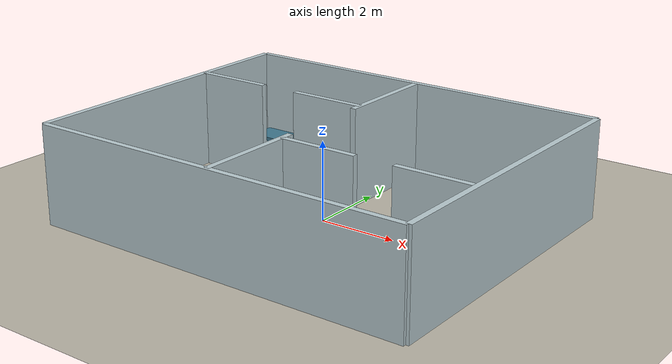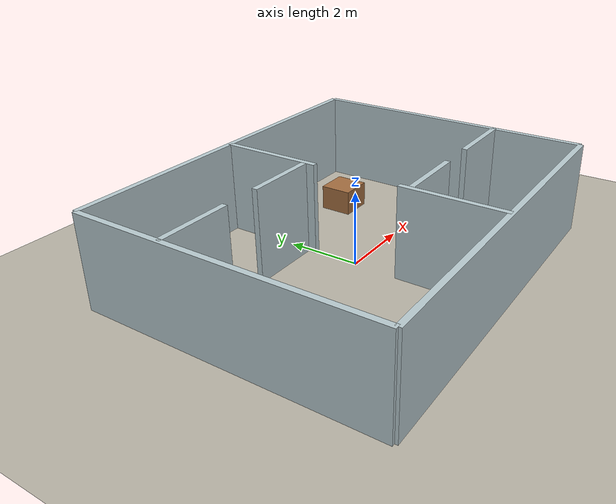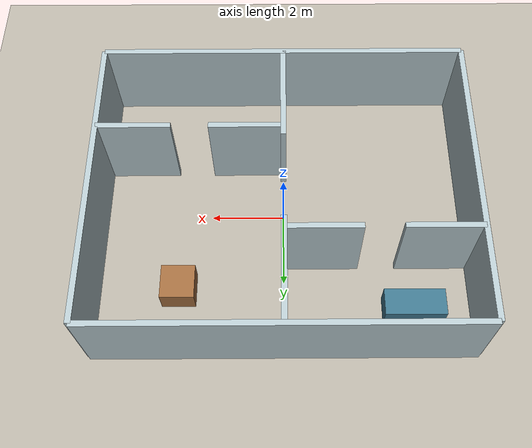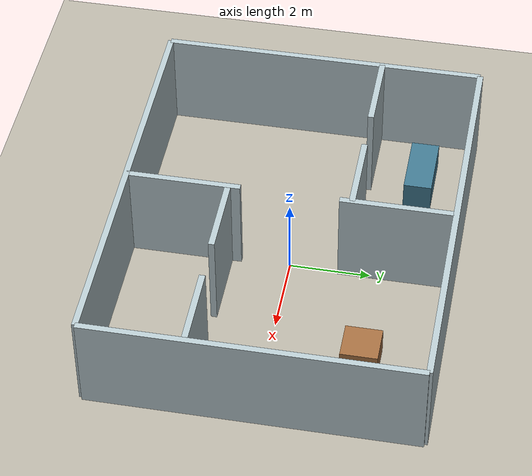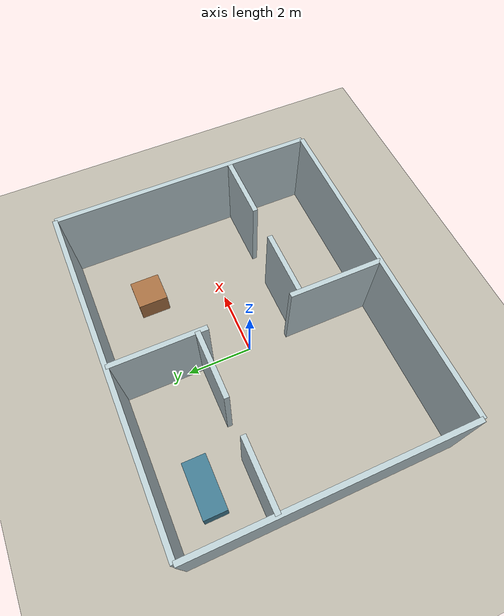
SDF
<?xml version="1.0"?>
<sdf version="1.8">
  <world name="default">
    <scene>
      <shadows>false</shadows>
      <ambient>0.55 0.55 0.55 1</ambient>
      <background>0.82 0.86 0.88 1</background>
    </scene>

    <gui fullscreen="0">
      <camera name="user_camera">
        <pose>0 -11 12 0 0.65 1.57</pose>
        <view_controller>orbit</view_controller>
        <projection_type>perspective</projection_type>
      </camera>
    </gui>

    <physics name="4ms" type="ode">
      <max_step_size>0.004</max_step_size>
      <real_time_update_rate>288</real_time_update_rate>
      <real_time_factor>1.15</real_time_factor>
    </physics>

    <plugin filename="gz-sim-physics-system"
            name="gz::sim::systems::Physics"/>
    <plugin filename="gz-sim-user-commands-system"
            name="gz::sim::systems::UserCommands"/>
    <plugin filename="gz-sim-scene-broadcaster-system"
            name="gz::sim::systems::SceneBroadcaster"/>
    <plugin filename="gz-sim-sensors-system"
            name="gz::sim::systems::Sensors">
      <render_engine>ogre2</render_engine>
    </plugin>
    <plugin filename="gz-sim-imu-system"
            name="gz::sim::systems::Imu"/>

    <light type="directional" name="sun">
      <cast_shadows>false</cast_shadows>
      <pose>0 0 10 0 0 0</pose>
      <diffuse>0.8 0.8 0.8 1</diffuse>
      <specular>0.2 0.2 0.2 1</specular>
      <direction>-0.5 0.1 -0.9</direction>
    </light>

    <model name="ground_plane">
      <static>true</static>
      <link name="floor">
        <collision name="collision">
          <geometry>
            <plane><normal>0 0 1</normal><size>20 20</size></plane>
          </geometry>
        </collision>
        <visual name="visual">
          <geometry>
            <plane><normal>0 0 1</normal><size>20 20</size></plane>
          </geometry>
          <material>
            <ambient>0.72 0.70 0.65 1</ambient>
            <diffuse>0.72 0.70 0.65 1</diffuse>
          </material>
        </visual>
      </link>
    </model>

    <model name="simple_house">
      <static>true</static>

      <link name="wall_west">
        <pose>-5 0 1.25 0 0 0</pose>
        <collision name="collision"><geometry><box><size>0.15 8 2.5</size></box></geometry></collision>
        <visual name="visual">
          <geometry><box><size>0.15 8 2.5</size></box></geometry>
          <material><ambient>0.72 0.79 0.81 1</ambient><diffuse>0.72 0.79 0.81 1</diffuse></material>
          <cast_shadows>false</cast_shadows>
        </visual>
      </link>
      <link name="wall_east">
        <pose>5 0 1.25 0 0 0</pose>
        <collision name="collision"><geometry><box><size>0.15 8 2.5</size></box></geometry></collision>
        <visual name="visual">
          <geometry><box><size>0.15 8 2.5</size></box></geometry>
          <material><ambient>0.72 0.79 0.81 1</ambient><diffuse>0.72 0.79 0.81 1</diffuse></material>
          <cast_shadows>false</cast_shadows>
        </visual>
      </link>
      <link name="wall_south">
        <pose>0 -4 1.25 0 0 0</pose>
        <collision name="collision"><geometry><box><size>10 0.15 2.5</size></box></geometry></collision>
        <visual name="visual">
          <geometry><box><size>10 0.15 2.5</size></box></geometry>
          <material><ambient>0.72 0.79 0.81 1</ambient><diffuse>0.72 0.79 0.81 1</diffuse></material>
          <cast_shadows>false</cast_shadows>
        </visual>
      </link>
      <link name="wall_north">
        <pose>0 4 1.25 0 0 0</pose>
        <collision name="collision"><geometry><box><size>10 0.15 2.5</size></box></geometry></collision>
        <visual name="visual">
          <geometry><box><size>10 0.15 2.5</size></box></geometry>
          <material><ambient>0.72 0.79 0.81 1</ambient><diffuse>0.72 0.79 0.81 1</diffuse></material>
          <cast_shadows>false</cast_shadows>
        </visual>
      </link>

      <link name="wall_center_south">
        <pose>0 -2.6 1.25 0 0 0</pose>
        <collision name="collision"><geometry><box><size>0.15 2.8 2.5</size></box></geometry></collision>
        <visual name="visual">
          <geometry><box><size>0.15 2.8 2.5</size></box></geometry>
          <material><ambient>0.72 0.79 0.81 1</ambient><diffuse>0.72 0.79 0.81 1</diffuse></material>
          <cast_shadows>false</cast_shadows>
        </visual>
      </link>
      <link name="wall_center_north">
        <pose>0 2.6 1.25 0 0 0</pose>
        <collision name="collision"><geometry><box><size>0.15 2.8 2.5</size></box></geometry></collision>
        <visual name="visual">
          <geometry><box><size>0.15 2.8 2.5</size></box></geometry>
          <material><ambient>0.72 0.79 0.81 1</ambient><diffuse>0.72 0.79 0.81 1</diffuse></material>
          <cast_shadows>false</cast_shadows>
        </visual>
      </link>

      <link name="wall_northwest_west">
        <pose>-4 1.5 1.25 0 0 0</pose>
        <collision name="collision"><geometry><box><size>2 0.15 2.5</size></box></geometry></collision>
        <visual name="visual">
          <geometry><box><size>2 0.15 2.5</size></box></geometry>
          <material><ambient>0.72 0.79 0.81 1</ambient><diffuse>0.72 0.79 0.81 1</diffuse></material>
          <cast_shadows>false</cast_shadows>
        </visual>
      </link>
      <link name="wall_northwest_east">
        <pose>-1 1.5 1.25 0 0 0</pose>
        <collision name="collision"><geometry><box><size>2 0.15 2.5</size></box></geometry></collision>
        <visual name="visual">
          <geometry><box><size>2 0.15 2.5</size></box></geometry>
          <material><ambient>0.72 0.79 0.81 1</ambient><diffuse>0.72 0.79 0.81 1</diffuse></material>
          <cast_shadows>false</cast_shadows>
        </visual>
      </link>

      <link name="wall_southeast_west">
        <pose>1 -1.5 1.25 0 0 0</pose>
        <collision name="collision"><geometry><box><size>2 0.15 2.5</size></box></geometry></collision>
        <visual name="visual">
          <geometry><box><size>2 0.15 2.5</size></box></geometry>
          <material><ambient>0.72 0.79 0.81 1</ambient><diffuse>0.72 0.79 0.81 1</diffuse></material>
          <cast_shadows>false</cast_shadows>
        </visual>
      </link>
      <link name="wall_southeast_east">
        <pose>4 -1.5 1.25 0 0 0</pose>
        <collision name="collision"><geometry><box><size>2 0.15 2.5</size></box></geometry></collision>
        <visual name="visual">
          <geometry><box><size>2 0.15 2.5</size></box></geometry>
          <material><ambient>0.72 0.79 0.81 1</ambient><diffuse>0.72 0.79 0.81 1</diffuse></material>
          <cast_shadows>false</cast_shadows>
        </visual>
      </link>

      <link name="sofa">
        <pose>-3.4 2.8 0.35 0 0 0</pose>
        <collision name="collision"><geometry><box><size>1.6 0.7 0.7</size></box></geometry></collision>
        <visual name="visual">
          <geometry><box><size>1.6 0.7 0.7</size></box></geometry>
          <material><ambient>0.25 0.47 0.56 1</ambient><diffuse>0.25 0.47 0.56 1</diffuse></material>
          <cast_shadows>false</cast_shadows>
        </visual>
      </link>
      <link name="table">
        <pose>2.8 2.2 0.35 0 0 0</pose>
        <collision name="collision"><geometry><box><size>0.9 0.9 0.7</size></box></geometry></collision>
        <visual name="visual">
          <geometry><box><size>0.9 0.9 0.7</size></box></geometry>
          <material><ambient>0.64 0.43 0.25 1</ambient><diffuse>0.64 0.43 0.25 1</diffuse></material>
          <cast_shadows>false</cast_shadows>
        </visual>
      </link>
    </model>
  </world>
</sdf>
